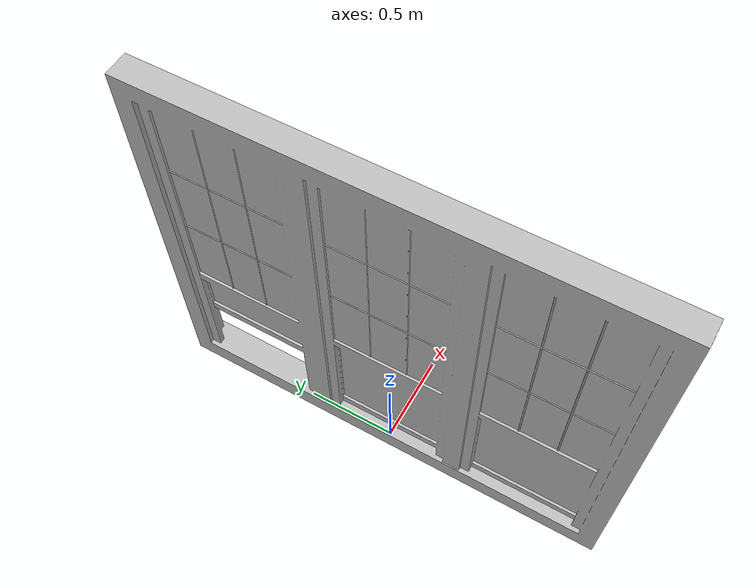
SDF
<?xml version='1.0'?>
<sdf version='1.4'>
  <model name='755'>
    <pose>0 0 0 0 0 0</pose>
    <static>true</static>
    <link name='link'>
      <collision name='collision'>
        <pose>0 0 0 0 0 0</pose>
        <geometry>
          <box>
            <size>0.16 2.50006 2</size>
          </box>
        </geometry>
      </collision>
      <visual name='visual'>
        <pose>0 0 0 0 0 0</pose>
        <geometry>
          <mesh><uri>model://755/755.dae</uri></mesh>
        </geometry>
      </visual>
    </link>
  </model>
</sdf>
